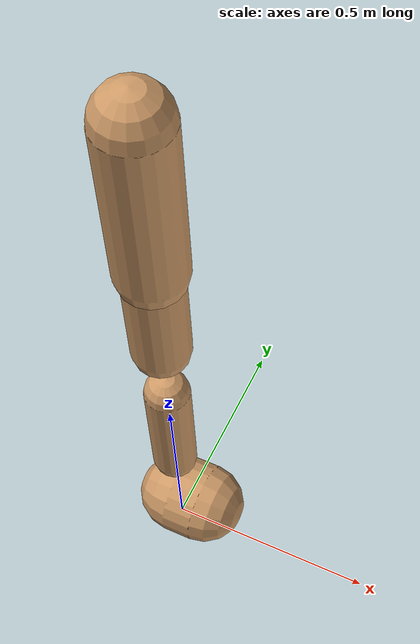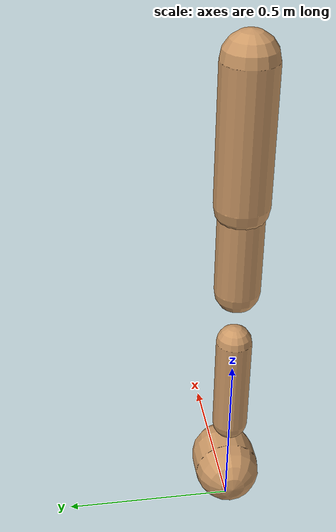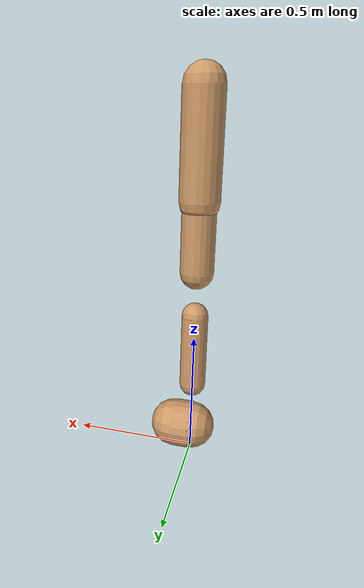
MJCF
<mujoco model="walker2d">
  <compiler angle="degree" coordinate="global" inertiafromgeom="true" />
  <default>
    <joint armature="0.01" damping=".1" limited="true" />
    <geom conaffinity="0" condim="3" contype="1" density="1000" friction="0.8 .1 .1" rgba="0.8 0.6 .4 1" />
  </default>
  <option integrator="RK4" timestep="0.002" />
  <worldbody>

    <body name="torso" pos="0 0 -0.3805697428989569">
      <joint armature="0" axis="1 0 0" damping="0" limited="false" name="ignorex" pos="0 0 0" stiffness="0" type="slide" />
      <joint armature="0" axis="0 0 1" damping="0" limited="false" name="ignorez" pos="0 0 0" ref="1.25" stiffness="0" type="slide" />
      <joint armature="0" axis="0 1 0" damping="0" limited="false" name="ignorey" pos="0 0 0" stiffness="0" type="hinge" />
      <geom fromto="0 0 1.45 0 0 1.05" name="torso_geom" size="0.07761586735709558" type="capsule" />
      <body name="thigh">
        <joint axis="0 -1 0" name="thigh_joint" pos="0 0 1.05" range="-150 0" type="hinge" />
        <geom fromto="0.0 0.0 1.05 0.0 0.0 0.7802698782152954" name="thigh_geom" size="0.0656161825552174" type="capsule" />
        <body name="leg" pos="0.0 0.0 0.1802698782152954">
          <joint axis="0 -1 0" name="leg_joint" pos="0 0 0.6" range="-150 0" type="hinge" />
          <geom fromto="0.0 0.0 0.6 0.0 0.0 0.30029986468366154" name="leg_geom" size="0.05249294604417392" type="capsule" />
          <body name="foot" pos="0.0 0.0 0.20029986468366154">
            <joint axis="0 -1 0" name="foot_joint" pos="0 0 0.1" range="-45 45" type="hinge" />
            <geom fromto="0.0 0.0 0.1 0.07006239428226901 0.0 0.1" name="foot_geom" size="0.09838462554744498" type="capsule" />
          </body>
        </body>
      </body>

      <body name="thigh_left">
        <joint axis="0 -1 0" name="thigh_left_joint" pos="0 0 1.05" range="-150 0" type="hinge" />
        <geom fromto="0.0 0.0 1.05 0.0 0.0 0.7802698782152954" name="thigh_left_geom" rgba=".7 .3 .6 1" size="0.0656161825552174" type="capsule" />
        <body name="leg_left" pos="0.0 0.0 0.1802698782152954">
          <joint axis="0 -1 0" name="leg_left_joint" pos="0 0 0.6" range="-150 0" type="hinge" />
          <geom fromto="0.0 0.0 0.6 0.0 0.0 0.30029986468366154" name="leg_left_geom" rgba=".7 .3 .6 1" size="0.05249294604417392" type="capsule" />
          <body name="foot_left" pos="0.0 0.0 0.20029986468366154">
            <joint axis="0 -1 0" name="foot_left_joint" pos="0 0 0.1" range="-45 45" type="hinge" />
            <geom fromto="0.0 0.0 0.1 0.07006239428226901 0.0 0.1" name="foot_left_geom" rgba=".7 .3 .6 1" size="0.09838462554744498" type="capsule" />
          </body>
        </body>
      </body>
    </body>
  </worldbody>
  <actuator>

    <motor ctrllimited="true" ctrlrange="-1.0 1.0" gear="100" joint="thigh_joint" />
    <motor ctrllimited="true" ctrlrange="-1.0 1.0" gear="100" joint="leg_joint" />
    <motor ctrllimited="true" ctrlrange="-1.0 1.0" gear="100" joint="foot_joint" />
    <motor ctrllimited="true" ctrlrange="-1.0 1.0" gear="100" joint="thigh_left_joint" />
    <motor ctrllimited="true" ctrlrange="-1.0 1.0" gear="100" joint="leg_left_joint" />
    <motor ctrllimited="true" ctrlrange="-1.0 1.0" gear="100" joint="foot_left_joint" />

  </actuator>
</mujoco>
